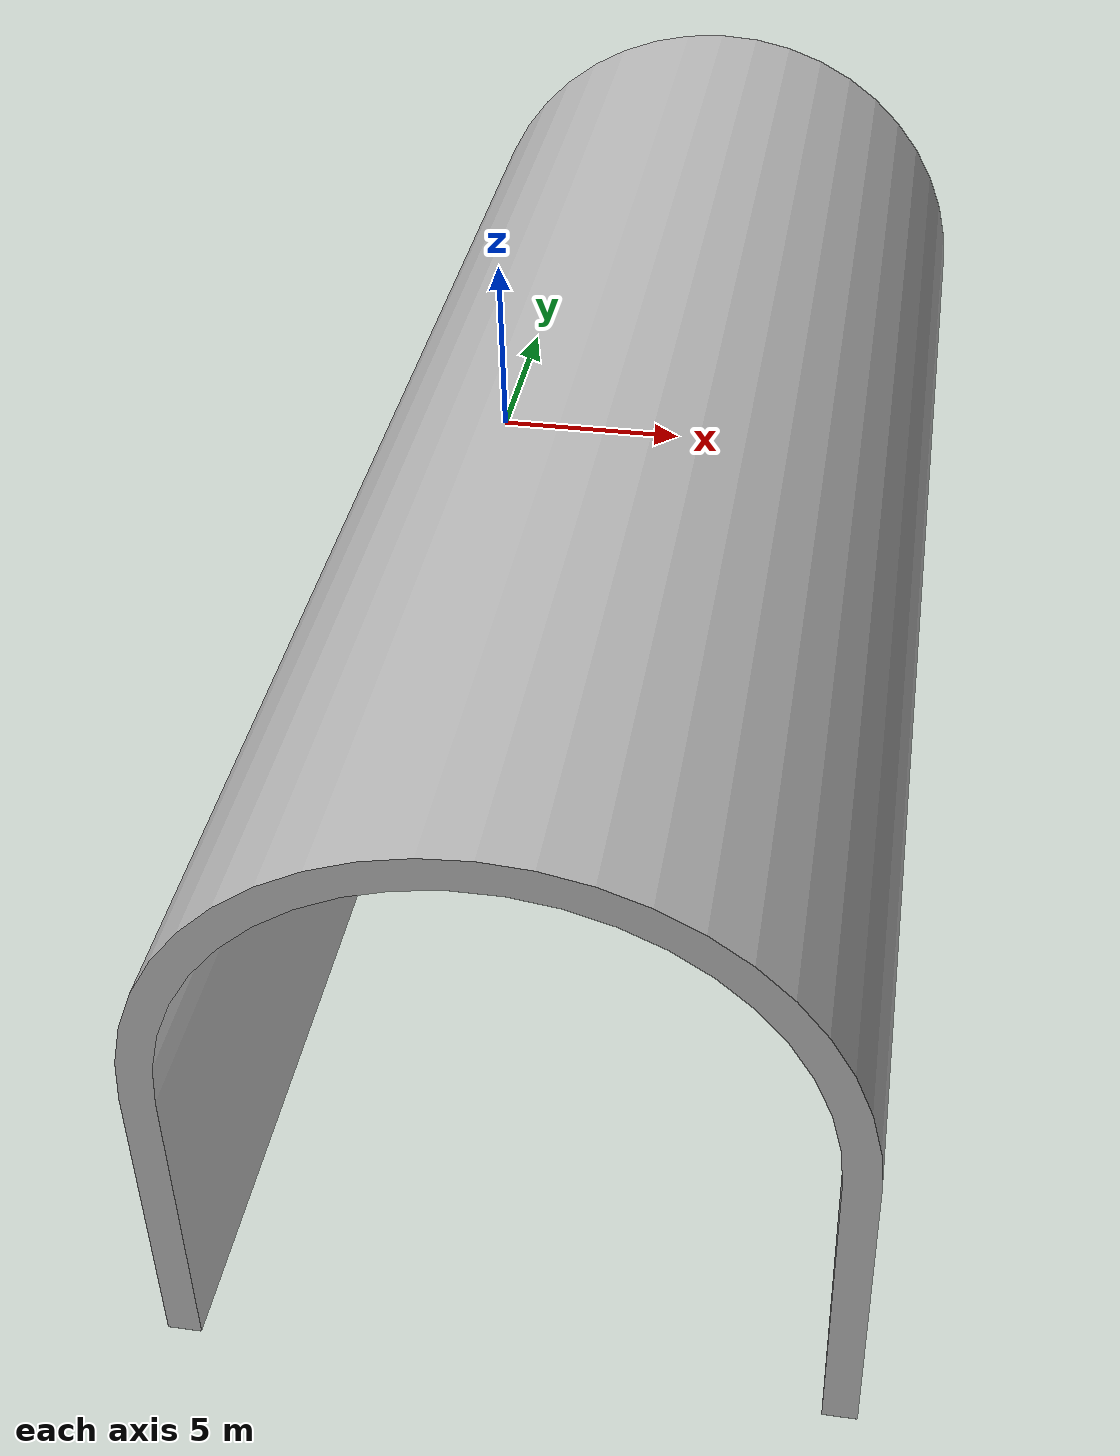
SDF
<?xml version='1.0'?>
<sdf version='1.6'>
  <model name='tunnel'>
    <pose>0 0 0 1.57 0 0</pose>
    <static>true</static>
    <link name="link">
      <collision name="collision">
        <geometry>
          <mesh>
            <uri>model://tunnel/meshes/tunnel_small.STL</uri>
            <scale>0.006 0.006 0.006</scale>
          </mesh>
        </geometry>
      </collision>

      <visual name="visual">
        <geometry>
          <mesh>
            <uri>model://tunnel/meshes/tunnel_small.STL</uri>
            <scale>0.006 0.006 0.006</scale>
          </mesh>
        </geometry>
      </visual>
    </link>
  </model>
</sdf>
